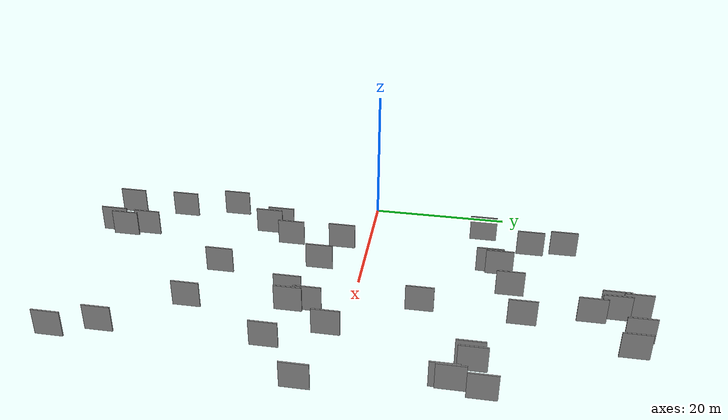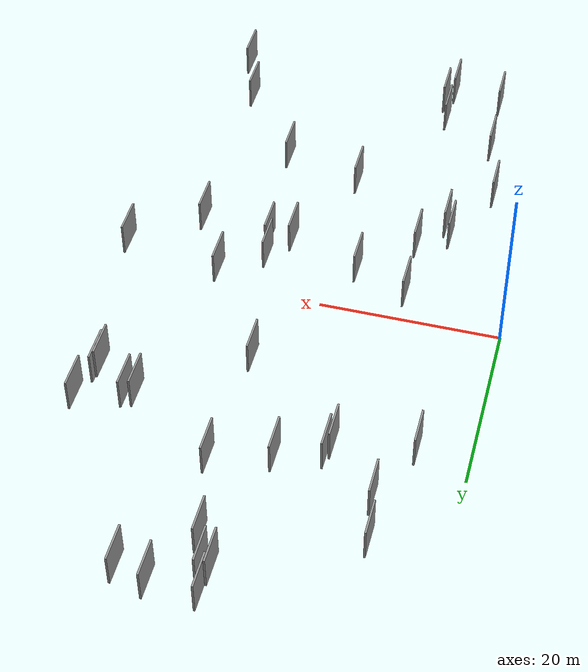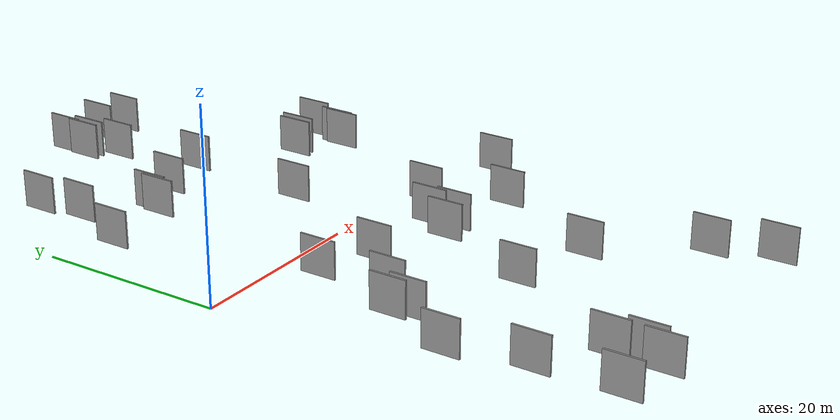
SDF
<sdf version="1.6">
 <world name="default">
  <scene>
   <sky><clouds><speed>12</speed></clouds></sky>
   <ambient>0.4 0.4 0.4 1</ambient>
   <background>0.7 0.7 0.7 1</background>
   <shadows>1</shadows>
  </scene>
  <gravity>0 0 -9.8066</gravity>
  <magnetic_field>6e-06 2.3e-05 -4.2e-05</magnetic_field>
  <physics default="0" name="default_physics" type="ode">
   <ode>
    <solver>
     <type>quick</type>
     <iters>10</iters>
     <sor>1.0</sor>
     <use_dynamic_moi_rescaling>0</use_dynamic_moi_rescaling>
    </solver>
    <constraints>
     <cfm>0</cfm>
     <erp>0.2</erp>
     <contact_max_correcting_vel>100</contact_max_correcting_vel>
     <contact_surface_layer>0.001</contact_surface_layer>
    </constraints>
   </ode>
   <max_step_size>0.004</max_step_size>
   <real_time_factor>1</real_time_factor>
   <real_time_update_rate>250</real_time_update_rate>
  </physics>
  <light name="sun" type="directional">
   <pose>0 0 10 0 0 0</pose>
   <diffuse>0.8 0.8 0.8 1</diffuse>
   <specular>0.2 0.2 0.2 1</specular>
   <attenuation>
    <range>1000</range>
    <constant>0.9</constant>
    <linear>0.01</linear>
    <quadratic>0.001</quadratic>
   </attenuation>
   <direction>-0.5 0.1 -0.9</direction>
  </light>
  <model name="grey_wall_1">
   <static>1</static>
   <pose>43.4611 -4.4167 0.0 0.000000 0.000000 1.570796</pose>
   <link name="link">
    <pose>0 0 2.00 0 0 0</pose>
    <collision name="collision"><geometry><box><size>4.00 0.2 4.00</size></box></geometry></collision>
    <visual name="visual">
     <cast_shadows>0</cast_shadows>
     <geometry><box><size>4.00 0.2 4.00</size></box></geometry>
     <material>
      <script>
       <uri>model://grey_wall/materials/scripts</uri>
       <uri>model://grey_wall/materials/textures</uri>
       <name>vrc/grey_wall</name>
      </script>
     </material>
    </visual>
   </link>
  </model>
  <model name="grey_wall_2">
   <static>1</static>
   <pose>7.7652 29.2097 0.0 0.000000 0.000000 1.570796</pose>
   <link name="link">
    <pose>0 0 2.00 0 0 0</pose>
    <collision name="collision"><geometry><box><size>4.00 0.2 4.00</size></box></geometry></collision>
    <visual name="visual">
     <cast_shadows>0</cast_shadows>
     <geometry><box><size>4.00 0.2 4.00</size></box></geometry>
     <material>
      <script>
       <uri>model://grey_wall/materials/scripts</uri>
       <uri>model://grey_wall/materials/textures</uri>
       <name>vrc/grey_wall</name>
      </script>
     </material>
    </visual>
   </link>
  </model>
  <model name="grey_wall_3">
   <static>1</static>
   <pose>4.5289 -22.1389 0.0 0.000000 0.000000 1.570796</pose>
   <link name="link">
    <pose>0 0 2.00 0 0 0</pose>
    <collision name="collision"><geometry><box><size>4.00 0.2 4.00</size></box></geometry></collision>
    <visual name="visual">
     <cast_shadows>0</cast_shadows>
     <geometry><box><size>4.00 0.2 4.00</size></box></geometry>
     <material>
      <script>
       <uri>model://grey_wall/materials/scripts</uri>
       <uri>model://grey_wall/materials/textures</uri>
       <name>vrc/grey_wall</name>
      </script>
     </material>
    </visual>
   </link>
  </model>
  <model name="grey_wall_4">
   <static>1</static>
   <pose>8.9324 -15.7940 0.0 0.000000 0.000000 1.570796</pose>
   <link name="link">
    <pose>0 0 2.00 0 0 0</pose>
    <collision name="collision"><geometry><box><size>4.00 0.2 4.00</size></box></geometry></collision>
    <visual name="visual">
     <cast_shadows>0</cast_shadows>
     <geometry><box><size>4.00 0.2 4.00</size></box></geometry>
     <material>
      <script>
       <uri>model://grey_wall/materials/scripts</uri>
       <uri>model://grey_wall/materials/textures</uri>
       <name>vrc/grey_wall</name>
      </script>
     </material>
    </visual>
   </link>
  </model>
  <model name="grey_wall_5">
   <static>1</static>
   <pose>13.9302 18.4947 0.0 0.000000 0.000000 1.570796</pose>
   <link name="link">
    <pose>0 0 2.00 0 0 0</pose>
    <collision name="collision"><geometry><box><size>4.00 0.2 4.00</size></box></geometry></collision>
    <visual name="visual">
     <cast_shadows>0</cast_shadows>
     <geometry><box><size>4.00 0.2 4.00</size></box></geometry>
     <material>
      <script>
       <uri>model://grey_wall/materials/scripts</uri>
       <uri>model://grey_wall/materials/textures</uri>
       <name>vrc/grey_wall</name>
      </script>
     </material>
    </visual>
   </link>
  </model>
  <model name="grey_wall_6">
   <static>1</static>
   <pose>30.4205 38.0196 0.0 0.000000 0.000000 1.570796</pose>
   <link name="link">
    <pose>0 0 2.00 0 0 0</pose>
    <collision name="collision"><geometry><box><size>4.00 0.2 4.00</size></box></geometry></collision>
    <visual name="visual">
     <cast_shadows>0</cast_shadows>
     <geometry><box><size>4.00 0.2 4.00</size></box></geometry>
     <material>
      <script>
       <uri>model://grey_wall/materials/scripts</uri>
       <uri>model://grey_wall/materials/textures</uri>
       <name>vrc/grey_wall</name>
      </script>
     </material>
    </visual>
   </link>
  </model>
  <model name="grey_wall_7">
   <static>1</static>
   <pose>17.2365 -6.3447 0.0 0.000000 0.000000 1.570796</pose>
   <link name="link">
    <pose>0 0 2.00 0 0 0</pose>
    <collision name="collision"><geometry><box><size>4.00 0.2 4.00</size></box></geometry></collision>
    <visual name="visual">
     <cast_shadows>0</cast_shadows>
     <geometry><box><size>4.00 0.2 4.00</size></box></geometry>
     <material>
      <script>
       <uri>model://grey_wall/materials/scripts</uri>
       <uri>model://grey_wall/materials/textures</uri>
       <name>vrc/grey_wall</name>
      </script>
     </material>
    </visual>
   </link>
  </model>
  <model name="grey_wall_8">
   <static>1</static>
   <pose>23.6583 32.7867 0.0 0.000000 0.000000 1.570796</pose>
   <link name="link">
    <pose>0 0 2.00 0 0 0</pose>
    <collision name="collision"><geometry><box><size>4.00 0.2 4.00</size></box></geometry></collision>
    <visual name="visual">
     <cast_shadows>0</cast_shadows>
     <geometry><box><size>4.00 0.2 4.00</size></box></geometry>
     <material>
      <script>
       <uri>model://grey_wall/materials/scripts</uri>
       <uri>model://grey_wall/materials/textures</uri>
       <name>vrc/grey_wall</name>
      </script>
     </material>
    </visual>
   </link>
  </model>
  <model name="grey_wall_9">
   <static>1</static>
   <pose>27.6014 -6.0131 0.0 0.000000 0.000000 1.570796</pose>
   <link name="link">
    <pose>0 0 2.00 0 0 0</pose>
    <collision name="collision"><geometry><box><size>4.00 0.2 4.00</size></box></geometry></collision>
    <visual name="visual">
     <cast_shadows>0</cast_shadows>
     <geometry><box><size>4.00 0.2 4.00</size></box></geometry>
     <material>
      <script>
       <uri>model://grey_wall/materials/scripts</uri>
       <uri>model://grey_wall/materials/textures</uri>
       <name>vrc/grey_wall</name>
      </script>
     </material>
    </visual>
   </link>
  </model>
  <model name="grey_wall_10">
   <static>1</static>
   <pose>22.5400 36.0966 0.0 0.000000 0.000000 1.570796</pose>
   <link name="link">
    <pose>0 0 2.00 0 0 0</pose>
    <collision name="collision"><geometry><box><size>4.00 0.2 4.00</size></box></geometry></collision>
    <visual name="visual">
     <cast_shadows>0</cast_shadows>
     <geometry><box><size>4.00 0.2 4.00</size></box></geometry>
     <material>
      <script>
       <uri>model://grey_wall/materials/scripts</uri>
       <uri>model://grey_wall/materials/textures</uri>
       <name>vrc/grey_wall</name>
      </script>
     </material>
    </visual>
   </link>
  </model>
  <model name="grey_wall_11">
   <static>1</static>
   <pose>28.0667 -8.6852 0.0 0.000000 0.000000 1.570796</pose>
   <link name="link">
    <pose>0 0 2.00 0 0 0</pose>
    <collision name="collision"><geometry><box><size>4.00 0.2 4.00</size></box></geometry></collision>
    <visual name="visual">
     <cast_shadows>0</cast_shadows>
     <geometry><box><size>4.00 0.2 4.00</size></box></geometry>
     <material>
      <script>
       <uri>model://grey_wall/materials/scripts</uri>
       <uri>model://grey_wall/materials/textures</uri>
       <name>vrc/grey_wall</name>
      </script>
     </material>
    </visual>
   </link>
  </model>
  <model name="grey_wall_12">
   <static>1</static>
   <pose>26.9973 38.9243 0.0 0.000000 0.000000 1.570796</pose>
   <link name="link">
    <pose>0 0 2.00 0 0 0</pose>
    <collision name="collision"><geometry><box><size>4.00 0.2 4.00</size></box></geometry></collision>
    <visual name="visual">
     <cast_shadows>0</cast_shadows>
     <geometry><box><size>4.00 0.2 4.00</size></box></geometry>
     <material>
      <script>
       <uri>model://grey_wall/materials/scripts</uri>
       <uri>model://grey_wall/materials/textures</uri>
       <name>vrc/grey_wall</name>
      </script>
     </material>
    </visual>
   </link>
  </model>
  <model name="grey_wall_13">
   <static>1</static>
   <pose>36.6958 -32.9422 0.0 0.000000 0.000000 1.570796</pose>
   <link name="link">
    <pose>0 0 2.00 0 0 0</pose>
    <collision name="collision"><geometry><box><size>4.00 0.2 4.00</size></box></geometry></collision>
    <visual name="visual">
     <cast_shadows>0</cast_shadows>
     <geometry><box><size>4.00 0.2 4.00</size></box></geometry>
     <material>
      <script>
       <uri>model://grey_wall/materials/scripts</uri>
       <uri>model://grey_wall/materials/textures</uri>
       <name>vrc/grey_wall</name>
      </script>
     </material>
    </visual>
   </link>
  </model>
  <model name="grey_wall_14">
   <static>1</static>
   <pose>19.2754 21.5604 0.0 0.000000 0.000000 1.570796</pose>
   <link name="link">
    <pose>0 0 2.00 0 0 0</pose>
    <collision name="collision"><geometry><box><size>4.00 0.2 4.00</size></box></geometry></collision>
    <visual name="visual">
     <cast_shadows>0</cast_shadows>
     <geometry><box><size>4.00 0.2 4.00</size></box></geometry>
     <material>
      <script>
       <uri>model://grey_wall/materials/scripts</uri>
       <uri>model://grey_wall/materials/textures</uri>
       <name>vrc/grey_wall</name>
      </script>
     </material>
    </visual>
   </link>
  </model>
  <model name="grey_wall_15">
   <static>1</static>
   <pose>11.5745 -11.7539 0.0 0.000000 0.000000 1.570796</pose>
   <link name="link">
    <pose>0 0 2.00 0 0 0</pose>
    <collision name="collision"><geometry><box><size>4.00 0.2 4.00</size></box></geometry></collision>
    <visual name="visual">
     <cast_shadows>0</cast_shadows>
     <geometry><box><size>4.00 0.2 4.00</size></box></geometry>
     <material>
      <script>
       <uri>model://grey_wall/materials/scripts</uri>
       <uri>model://grey_wall/materials/textures</uri>
       <name>vrc/grey_wall</name>
      </script>
     </material>
    </visual>
   </link>
  </model>
  <model name="grey_wall_16">
   <static>1</static>
   <pose>12.3602 -39.7356 0.0 0.000000 0.000000 1.570796</pose>
   <link name="link">
    <pose>0 0 2.00 0 0 0</pose>
    <collision name="collision"><geometry><box><size>4.00 0.2 4.00</size></box></geometry></collision>
    <visual name="visual">
     <cast_shadows>0</cast_shadows>
     <geometry><box><size>4.00 0.2 4.00</size></box></geometry>
     <material>
      <script>
       <uri>model://grey_wall/materials/scripts</uri>
       <uri>model://grey_wall/materials/textures</uri>
       <name>vrc/grey_wall</name>
      </script>
     </material>
    </visual>
   </link>
  </model>
  <model name="grey_wall_17">
   <static>1</static>
   <pose>11.2399 -3.9809 0.0 0.000000 0.000000 1.570796</pose>
   <link name="link">
    <pose>0 0 2.00 0 0 0</pose>
    <collision name="collision"><geometry><box><size>4.00 0.2 4.00</size></box></geometry></collision>
    <visual name="visual">
     <cast_shadows>0</cast_shadows>
     <geometry><box><size>4.00 0.2 4.00</size></box></geometry>
     <material>
      <script>
       <uri>model://grey_wall/materials/scripts</uri>
       <uri>model://grey_wall/materials/textures</uri>
       <name>vrc/grey_wall</name>
      </script>
     </material>
    </visual>
   </link>
  </model>
  <model name="grey_wall_18">
   <static>1</static>
   <pose>32.3186 -2.5547 0.0 0.000000 0.000000 1.570796</pose>
   <link name="link">
    <pose>0 0 2.00 0 0 0</pose>
    <collision name="collision"><geometry><box><size>4.00 0.2 4.00</size></box></geometry></collision>
    <visual name="visual">
     <cast_shadows>0</cast_shadows>
     <geometry><box><size>4.00 0.2 4.00</size></box></geometry>
     <material>
      <script>
       <uri>model://grey_wall/materials/scripts</uri>
       <uri>model://grey_wall/materials/textures</uri>
       <name>vrc/grey_wall</name>
      </script>
     </material>
    </visual>
   </link>
  </model>
  <model name="grey_wall_19">
   <static>1</static>
   <pose>8.5202 24.2947 0.0 0.000000 0.000000 1.570796</pose>
   <link name="link">
    <pose>0 0 2.00 0 0 0</pose>
    <collision name="collision"><geometry><box><size>4.00 0.2 4.00</size></box></geometry></collision>
    <visual name="visual">
     <cast_shadows>0</cast_shadows>
     <geometry><box><size>4.00 0.2 4.00</size></box></geometry>
     <material>
      <script>
       <uri>model://grey_wall/materials/scripts</uri>
       <uri>model://grey_wall/materials/textures</uri>
       <name>vrc/grey_wall</name>
      </script>
     </material>
    </visual>
   </link>
  </model>
  <model name="grey_wall_20">
   <static>1</static>
   <pose>6.2668 -30.1538 0.0 0.000000 0.000000 1.570796</pose>
   <link name="link">
    <pose>0 0 2.00 0 0 0</pose>
    <collision name="collision"><geometry><box><size>4.00 0.2 4.00</size></box></geometry></collision>
    <visual name="visual">
     <cast_shadows>0</cast_shadows>
     <geometry><box><size>4.00 0.2 4.00</size></box></geometry>
     <material>
      <script>
       <uri>model://grey_wall/materials/scripts</uri>
       <uri>model://grey_wall/materials/textures</uri>
       <name>vrc/grey_wall</name>
      </script>
     </material>
    </visual>
   </link>
  </model>
  <model name="grey_wall_21">
   <static>1</static>
   <pose>40.4555 14.8352 0.0 0.000000 0.000000 1.570796</pose>
   <link name="link">
    <pose>0 0 2.00 0 0 0</pose>
    <collision name="collision"><geometry><box><size>4.00 0.2 4.00</size></box></geometry></collision>
    <visual name="visual">
     <cast_shadows>0</cast_shadows>
     <geometry><box><size>4.00 0.2 4.00</size></box></geometry>
     <material>
      <script>
       <uri>model://grey_wall/materials/scripts</uri>
       <uri>model://grey_wall/materials/textures</uri>
       <name>vrc/grey_wall</name>
      </script>
     </material>
    </visual>
   </link>
  </model>
  <model name="grey_wall_22">
   <static>1</static>
   <pose>25.0120 9.3199 0.0 0.000000 0.000000 1.570796</pose>
   <link name="link">
    <pose>0 0 2.00 0 0 0</pose>
    <collision name="collision"><geometry><box><size>4.00 0.2 4.00</size></box></geometry></collision>
    <visual name="visual">
     <cast_shadows>0</cast_shadows>
     <geometry><box><size>4.00 0.2 4.00</size></box></geometry>
     <material>
      <script>
       <uri>model://grey_wall/materials/scripts</uri>
       <uri>model://grey_wall/materials/textures</uri>
       <name>vrc/grey_wall</name>
      </script>
     </material>
    </visual>
   </link>
  </model>
  <model name="grey_wall_23">
   <static>1</static>
   <pose>38.7995 -39.1545 0.0 0.000000 0.000000 1.570796</pose>
   <link name="link">
    <pose>0 0 2.00 0 0 0</pose>
    <collision name="collision"><geometry><box><size>4.00 0.2 4.00</size></box></geometry></collision>
    <visual name="visual">
     <cast_shadows>0</cast_shadows>
     <geometry><box><size>4.00 0.2 4.00</size></box></geometry>
     <material>
      <script>
       <uri>model://grey_wall/materials/scripts</uri>
       <uri>model://grey_wall/materials/textures</uri>
       <name>vrc/grey_wall</name>
      </script>
     </material>
    </visual>
   </link>
  </model>
  <model name="grey_wall_24">
   <static>1</static>
   <pose>25.4463 -9.2913 0.0 0.000000 0.000000 1.570796</pose>
   <link name="link">
    <pose>0 0 2.00 0 0 0</pose>
    <collision name="collision"><geometry><box><size>4.00 0.2 4.00</size></box></geometry></collision>
    <visual name="visual">
     <cast_shadows>0</cast_shadows>
     <geometry><box><size>4.00 0.2 4.00</size></box></geometry>
     <material>
      <script>
       <uri>model://grey_wall/materials/scripts</uri>
       <uri>model://grey_wall/materials/textures</uri>
       <name>vrc/grey_wall</name>
      </script>
     </material>
    </visual>
   </link>
  </model>
  <model name="grey_wall_25">
   <static>1</static>
   <pose>5.5265 17.1444 0.0 0.000000 0.000000 1.570796</pose>
   <link name="link">
    <pose>0 0 2.00 0 0 0</pose>
    <collision name="collision"><geometry><box><size>4.00 0.2 4.00</size></box></geometry></collision>
    <visual name="visual">
     <cast_shadows>0</cast_shadows>
     <geometry><box><size>4.00 0.2 4.00</size></box></geometry>
     <material>
      <script>
       <uri>model://grey_wall/materials/scripts</uri>
       <uri>model://grey_wall/materials/textures</uri>
       <name>vrc/grey_wall</name>
      </script>
     </material>
    </visual>
   </link>
  </model>
  <model name="grey_wall_26">
   <static>1</static>
   <pose>36.4590 17.3320 0.0 0.000000 0.000000 1.570796</pose>
   <link name="link">
    <pose>0 0 2.00 0 0 0</pose>
    <collision name="collision"><geometry><box><size>4.00 0.2 4.00</size></box></geometry></collision>
    <visual name="visual">
     <cast_shadows>0</cast_shadows>
     <geometry><box><size>4.00 0.2 4.00</size></box></geometry>
     <material>
      <script>
       <uri>model://grey_wall/materials/scripts</uri>
       <uri>model://grey_wall/materials/textures</uri>
       <name>vrc/grey_wall</name>
      </script>
     </material>
    </visual>
   </link>
  </model>
  <model name="grey_wall_27">
   <static>1</static>
   <pose>8.1536 -14.1096 0.0 0.000000 0.000000 1.570796</pose>
   <link name="link">
    <pose>0 0 2.00 0 0 0</pose>
    <collision name="collision"><geometry><box><size>4.00 0.2 4.00</size></box></geometry></collision>
    <visual name="visual">
     <cast_shadows>0</cast_shadows>
     <geometry><box><size>4.00 0.2 4.00</size></box></geometry>
     <material>
      <script>
       <uri>model://grey_wall/materials/scripts</uri>
       <uri>model://grey_wall/materials/textures</uri>
       <name>vrc/grey_wall</name>
      </script>
     </material>
    </visual>
   </link>
  </model>
  <model name="grey_wall_28">
   <static>1</static>
   <pose>40.2459 14.0135 0.0 0.000000 0.000000 1.570796</pose>
   <link name="link">
    <pose>0 0 2.00 0 0 0</pose>
    <collision name="collision"><geometry><box><size>4.00 0.2 4.00</size></box></geometry></collision>
    <visual name="visual">
     <cast_shadows>0</cast_shadows>
     <geometry><box><size>4.00 0.2 4.00</size></box></geometry>
     <material>
      <script>
       <uri>model://grey_wall/materials/scripts</uri>
       <uri>model://grey_wall/materials/textures</uri>
       <name>vrc/grey_wall</name>
      </script>
     </material>
    </visual>
   </link>
  </model>
  <model name="grey_wall_29">
   <static>1</static>
   <pose>13.2906 -37.7220 0.0 0.000000 0.000000 1.570796</pose>
   <link name="link">
    <pose>0 0 2.00 0 0 0</pose>
    <collision name="collision"><geometry><box><size>4.00 0.2 4.00</size></box></geometry></collision>
    <visual name="visual">
     <cast_shadows>0</cast_shadows>
     <geometry><box><size>4.00 0.2 4.00</size></box></geometry>
     <material>
      <script>
       <uri>model://grey_wall/materials/scripts</uri>
       <uri>model://grey_wall/materials/textures</uri>
       <name>vrc/grey_wall</name>
      </script>
     </material>
    </visual>
   </link>
  </model>
  <model name="grey_wall_30">
   <static>1</static>
   <pose>14.3458 19.8846 0.0 0.000000 0.000000 1.570796</pose>
   <link name="link">
    <pose>0 0 2.00 0 0 0</pose>
    <collision name="collision"><geometry><box><size>4.00 0.2 4.00</size></box></geometry></collision>
    <visual name="visual">
     <cast_shadows>0</cast_shadows>
     <geometry><box><size>4.00 0.2 4.00</size></box></geometry>
     <material>
      <script>
       <uri>model://grey_wall/materials/scripts</uri>
       <uri>model://grey_wall/materials/textures</uri>
       <name>vrc/grey_wall</name>
      </script>
     </material>
    </visual>
   </link>
  </model>
  <model name="grey_wall_31">
   <static>1</static>
   <pose>21.5252 36.0146 0.0 0.000000 0.000000 1.570796</pose>
   <link name="link">
    <pose>0 0 2.00 0 0 0</pose>
    <collision name="collision"><geometry><box><size>4.00 0.2 4.00</size></box></geometry></collision>
    <visual name="visual">
     <cast_shadows>0</cast_shadows>
     <geometry><box><size>4.00 0.2 4.00</size></box></geometry>
     <material>
      <script>
       <uri>model://grey_wall/materials/scripts</uri>
       <uri>model://grey_wall/materials/textures</uri>
       <name>vrc/grey_wall</name>
      </script>
     </material>
    </visual>
   </link>
  </model>
  <model name="grey_wall_32">
   <static>1</static>
   <pose>6.6328 -38.6857 0.0 0.000000 0.000000 1.570796</pose>
   <link name="link">
    <pose>0 0 2.00 0 0 0</pose>
    <collision name="collision"><geometry><box><size>4.00 0.2 4.00</size></box></geometry></collision>
    <visual name="visual">
     <cast_shadows>0</cast_shadows>
     <geometry><box><size>4.00 0.2 4.00</size></box></geometry>
     <material>
      <script>
       <uri>model://grey_wall/materials/scripts</uri>
       <uri>model://grey_wall/materials/textures</uri>
       <name>vrc/grey_wall</name>
      </script>
     </material>
    </visual>
   </link>
  </model>
  <model name="grey_wall_33">
   <static>1</static>
   <pose>29.4282 -22.9187 0.0 0.000000 0.000000 1.570796</pose>
   <link name="link">
    <pose>0 0 2.00 0 0 0</pose>
    <collision name="collision"><geometry><box><size>4.00 0.2 4.00</size></box></geometry></collision>
    <visual name="visual">
     <cast_shadows>0</cast_shadows>
     <geometry><box><size>4.00 0.2 4.00</size></box></geometry>
     <material>
      <script>
       <uri>model://grey_wall/materials/scripts</uri>
       <uri>model://grey_wall/materials/textures</uri>
       <name>vrc/grey_wall</name>
      </script>
     </material>
    </visual>
   </link>
  </model>
  <model name="grey_wall_34">
   <static>1</static>
   <pose>35.4074 16.9643 0.0 0.000000 0.000000 1.570796</pose>
   <link name="link">
    <pose>0 0 2.00 0 0 0</pose>
    <collision name="collision"><geometry><box><size>4.00 0.2 4.00</size></box></geometry></collision>
    <visual name="visual">
     <cast_shadows>0</cast_shadows>
     <geometry><box><size>4.00 0.2 4.00</size></box></geometry>
     <material>
      <script>
       <uri>model://grey_wall/materials/scripts</uri>
       <uri>model://grey_wall/materials/textures</uri>
       <name>vrc/grey_wall</name>
      </script>
     </material>
    </visual>
   </link>
  </model>
  <model name="grey_wall_35">
   <static>1</static>
   <pose>20.4808 -20.5655 0.0 0.000000 0.000000 1.570796</pose>
   <link name="link">
    <pose>0 0 2.00 0 0 0</pose>
    <collision name="collision"><geometry><box><size>4.00 0.2 4.00</size></box></geometry></collision>
    <visual name="visual">
     <cast_shadows>0</cast_shadows>
     <geometry><box><size>4.00 0.2 4.00</size></box></geometry>
     <material>
      <script>
       <uri>model://grey_wall/materials/scripts</uri>
       <uri>model://grey_wall/materials/textures</uri>
       <name>vrc/grey_wall</name>
      </script>
     </material>
    </visual>
   </link>
  </model>
  <model name="grey_wall_36">
   <static>1</static>
   <pose>25.7604 23.3898 0.0 0.000000 0.000000 1.570796</pose>
   <link name="link">
    <pose>0 0 2.00 0 0 0</pose>
    <collision name="collision"><geometry><box><size>4.00 0.2 4.00</size></box></geometry></collision>
    <visual name="visual">
     <cast_shadows>0</cast_shadows>
     <geometry><box><size>4.00 0.2 4.00</size></box></geometry>
     <material>
      <script>
       <uri>model://grey_wall/materials/scripts</uri>
       <uri>model://grey_wall/materials/textures</uri>
       <name>vrc/grey_wall</name>
      </script>
     </material>
    </visual>
   </link>
  </model>
  <model name="grey_wall_37">
   <static>1</static>
   <pose>36.1763 -10.1638 0.0 0.000000 0.000000 1.570796</pose>
   <link name="link">
    <pose>0 0 2.00 0 0 0</pose>
    <collision name="collision"><geometry><box><size>4.00 0.2 4.00</size></box></geometry></collision>
    <visual name="visual">
     <cast_shadows>0</cast_shadows>
     <geometry><box><size>4.00 0.2 4.00</size></box></geometry>
     <material>
      <script>
       <uri>model://grey_wall/materials/scripts</uri>
       <uri>model://grey_wall/materials/textures</uri>
       <name>vrc/grey_wall</name>
      </script>
     </material>
    </visual>
   </link>
  </model>
  <model name="grey_wall_38">
   <static>1</static>
   <pose>21.7481 38.9348 0.0 0.000000 0.000000 1.570796</pose>
   <link name="link">
    <pose>0 0 2.00 0 0 0</pose>
    <collision name="collision"><geometry><box><size>4.00 0.2 4.00</size></box></geometry></collision>
    <visual name="visual">
     <cast_shadows>0</cast_shadows>
     <geometry><box><size>4.00 0.2 4.00</size></box></geometry>
     <material>
      <script>
       <uri>model://grey_wall/materials/scripts</uri>
       <uri>model://grey_wall/materials/textures</uri>
       <name>vrc/grey_wall</name>
      </script>
     </material>
    </visual>
   </link>
  </model>
  <model name="grey_wall_39">
   <static>1</static>
   <pose>41.5363 18.8372 0.0 0.000000 0.000000 1.570796</pose>
   <link name="link">
    <pose>0 0 2.00 0 0 0</pose>
    <collision name="collision"><geometry><box><size>4.00 0.2 4.00</size></box></geometry></collision>
    <visual name="visual">
     <cast_shadows>0</cast_shadows>
     <geometry><box><size>4.00 0.2 4.00</size></box></geometry>
     <material>
      <script>
       <uri>model://grey_wall/materials/scripts</uri>
       <uri>model://grey_wall/materials/textures</uri>
       <name>vrc/grey_wall</name>
      </script>
     </material>
    </visual>
   </link>
  </model>
  <model name="grey_wall_40">
   <static>1</static>
   <pose>12.4906 -34.4691 0.0 0.000000 0.000000 1.570796</pose>
   <link name="link">
    <pose>0 0 2.00 0 0 0</pose>
    <collision name="collision"><geometry><box><size>4.00 0.2 4.00</size></box></geometry></collision>
    <visual name="visual">
     <cast_shadows>0</cast_shadows>
     <geometry><box><size>4.00 0.2 4.00</size></box></geometry>
     <material>
      <script>
       <uri>model://grey_wall/materials/scripts</uri>
       <uri>model://grey_wall/materials/textures</uri>
       <name>vrc/grey_wall</name>
      </script>
     </material>
    </visual>
   </link>
  </model>
 </world>
</sdf>
